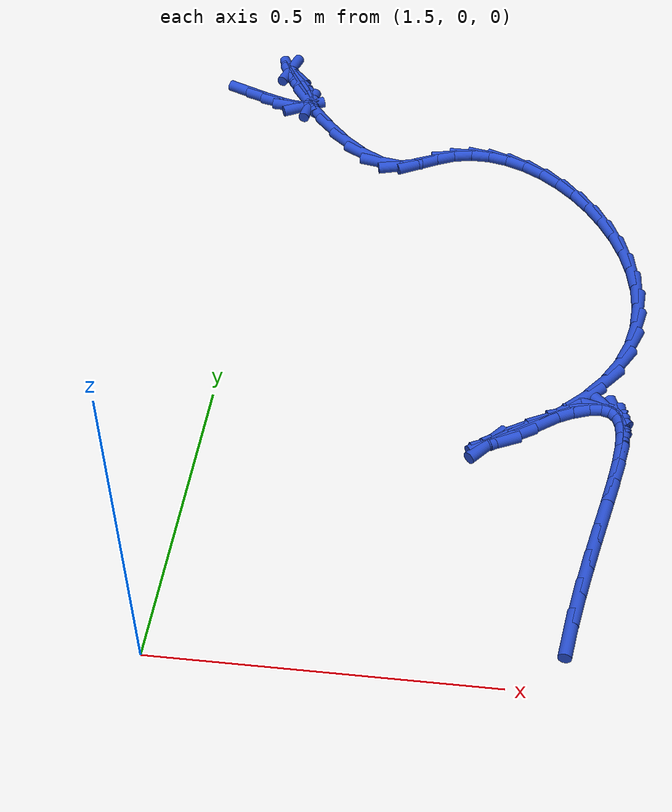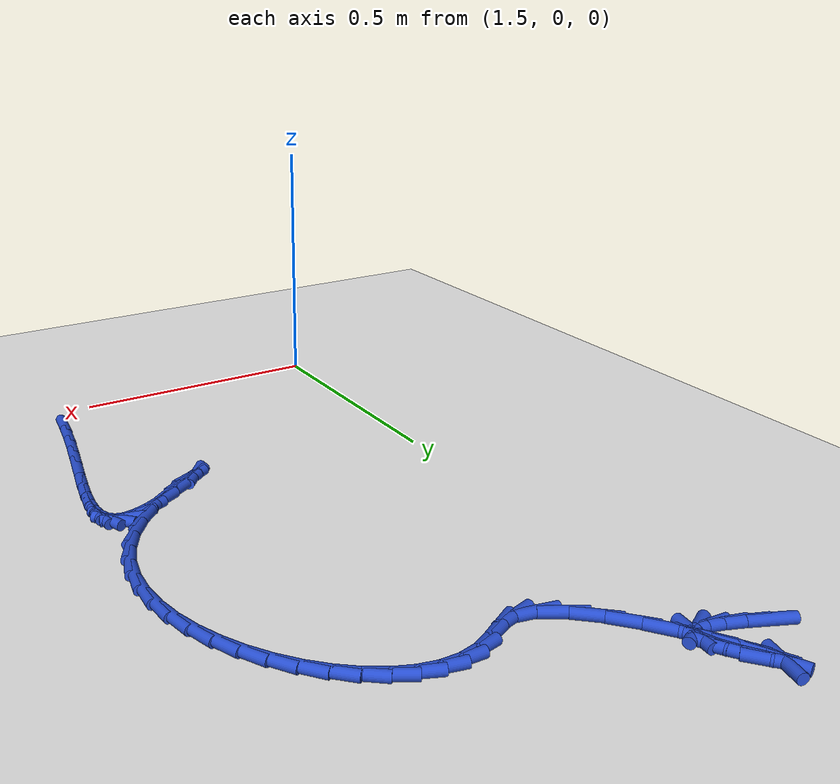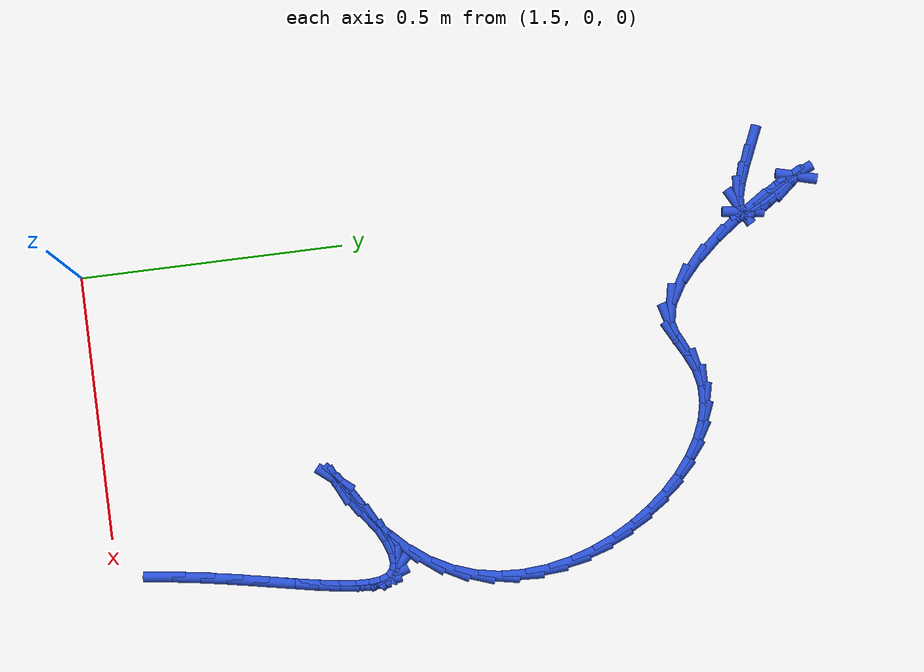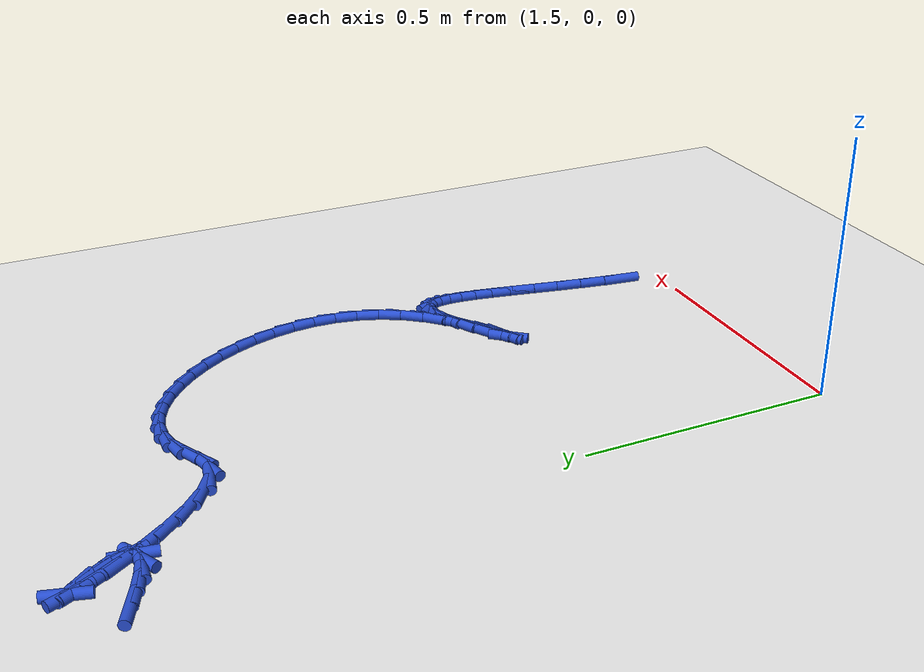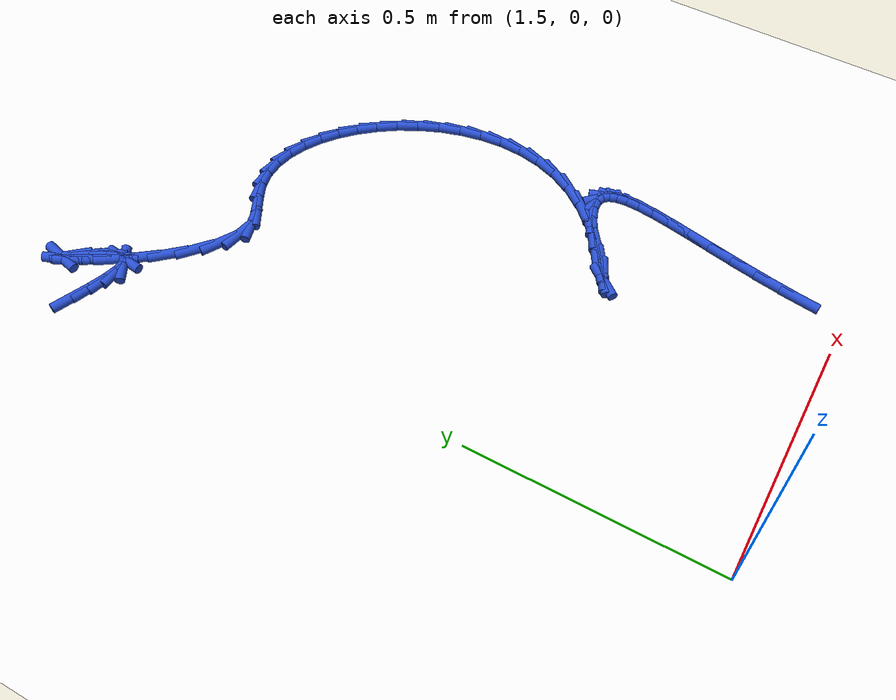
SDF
<sdf version="1.6">
 <world name="default">
  <model name="ground_plane">
   <static>1</static>
   <link name="link">
    <collision name="collision">
     <geometry><plane><normal>0 0 1</normal><size>100 100</size></plane></geometry>
     <surface><friction><ode><mu>100</mu><mu2>50</mu2></ode></friction></surface>
    </collision>
    <visual name="visual">
     <cast_shadows>0</cast_shadows>
     <geometry><plane><normal>0 0 1</normal><size>100 100</size></plane></geometry>
     <material>
      <script><uri>file://media/materials/scripts/gazebo.material</uri><name>Gazebo/WhiteGlow</name></script>
     </material>
    </visual>
   </link>
  </model>
  <model name="line">
   <link name="link_70">
    <pose>1.408879136556868 1.2959963773968743 0.01 0 1.57 -0.41155478175469357</pose>
    <collision name="collision">
     <geometry><cylinder><radius>0.01</radius><length>0.08</length></cylinder></geometry>
    </collision>
    <visual name="visual">
     <material>
      <script><name>Gazebo/Blue</name><uri>file://media/materials/scripts/gazebo.material</uri></script>
     </material>
     <geometry><cylinder><radius>0.01</radius><length>0.08</length></cylinder></geometry>
    </visual>
   </link>
   <link name="link_71">
    <pose>1.445638414417487 1.2799516531413841 0.01 0 1.57 -0.36487660915361647</pose>
    <collision name="collision">
     <geometry><cylinder><radius>0.01</radius><length>0.08</length></cylinder></geometry>
    </collision>
    <visual name="visual">
     <material>
      <script><name>Gazebo/Blue</name><uri>file://media/materials/scripts/gazebo.material</uri></script>
     </material>
     <geometry><cylinder><radius>0.01</radius><length>0.08</length></cylinder></geometry>
    </visual>
   </link>
   <link name="link_72">
    <pose>1.4772559102940783 1.267874381290892 0.01 0 1.57 -0.27221730299844576</pose>
    <collision name="collision">
     <geometry><cylinder><radius>0.01</radius><length>0.08</length></cylinder></geometry>
    </collision>
    <visual name="visual">
     <material>
      <script><name>Gazebo/Blue</name><uri>file://media/materials/scripts/gazebo.material</uri></script>
     </material>
     <geometry><cylinder><radius>0.01</radius><length>0.08</length></cylinder></geometry>
    </visual>
   </link>
   <link name="link_73">
    <pose>1.5028147244982089 1.260739721549803 0.01 0 1.57 -0.06538975457168264</pose>
    <collision name="collision">
     <geometry><cylinder><radius>0.01</radius><length>0.08</length></cylinder></geometry>
    </collision>
    <visual name="visual">
     <material>
      <script><name>Gazebo/Blue</name><uri>file://media/materials/scripts/gazebo.material</uri></script>
     </material>
     <geometry><cylinder><radius>0.01</radius><length>0.08</length></cylinder></geometry>
    </visual>
   </link>
   <link name="link_74">
    <pose>1.5213979573414456 1.2595228336225222 0.01 0 1.57 0.48808455209873003</pose>
    <collision name="collision">
     <geometry><cylinder><radius>0.01</radius><length>0.08</length></cylinder></geometry>
    </collision>
    <visual name="visual">
     <material>
      <script><name>Gazebo/Blue</name><uri>file://media/materials/scripts/gazebo.material</uri></script>
     </material>
     <geometry><cylinder><radius>0.01</radius><length>0.08</length></cylinder></geometry>
    </visual>
   </link>
   <link name="link_75">
    <pose>1.532088709135356 1.2651988772134546 0.01 0 1.57 1.4327728302426603</pose>
    <collision name="collision">
     <geometry><cylinder><radius>0.01</radius><length>0.08</length></cylinder></geometry>
    </collision>
    <visual name="visual">
     <material>
      <script><name>Gazebo/Blue</name><uri>file://media/materials/scripts/gazebo.material</uri></script>
     </material>
     <geometry><cylinder><radius>0.01</radius><length>0.08</length></cylinder></geometry>
    </visual>
   </link>
   <link name="link_76">
    <pose>1.5339700801915075 1.2787430120270062 0.01 0 1.57 -1.233750508250868</pose>
    <collision name="collision">
     <geometry><cylinder><radius>0.01</radius><length>0.08</length></cylinder></geometry>
    </collision>
    <visual name="visual">
     <material>
      <script><name>Gazebo/Blue</name><uri>file://media/materials/scripts/gazebo.material</uri></script>
     </material>
     <geometry><cylinder><radius>0.01</radius><length>0.08</length></cylinder></geometry>
    </visual>
   </link>
   <link name="link_77">
    <pose>1.5261251708214667 1.301130397767581 0.01 0 1.57 -1.0558645574576324</pose>
    <collision name="collision">
     <geometry><cylinder><radius>0.01</radius><length>0.08</length></cylinder></geometry>
    </collision>
    <visual name="visual">
     <material>
      <script><name>Gazebo/Blue</name><uri>file://media/materials/scripts/gazebo.material</uri></script>
     </material>
     <geometry><cylinder><radius>0.01</radius><length>0.08</length></cylinder></geometry>
    </visual>
   </link>
   <link name="link_78">
    <pose>1.5087342437098061 1.3318644803971376 0.01 0 1.57 -0.9763208478459828</pose>
    <collision name="collision">
     <geometry><cylinder><radius>0.01</radius><length>0.08</length></cylinder></geometry>
    </collision>
    <visual name="visual">
     <material>
      <script><name>Gazebo/Blue</name><uri>file://media/materials/scripts/gazebo.material</uri></script>
     </material>
     <geometry><cylinder><radius>0.01</radius><length>0.08</length></cylinder></geometry>
    </visual>
   </link>
   <link name="link_79">
    <pose>1.4891869022287192 1.3607782268081703 0.01 0 1.57 -0.8588360218117883</pose>
    <collision name="collision">
     <geometry><cylinder><radius>0.01</radius><length>0.08</length></cylinder></geometry>
    </collision>
    <visual name="visual">
     <material>
      <script><name>Gazebo/Blue</name><uri>file://media/materials/scripts/gazebo.material</uri></script>
     </material>
     <geometry><cylinder><radius>0.01</radius><length>0.08</length></cylinder></geometry>
    </visual>
   </link>
   <link name="link_80">
    <pose>1.4772433302474652 1.3746187380056363 0.01 0 1.57 1.309518038997576</pose>
    <collision name="collision">
     <geometry><cylinder><radius>0.01</radius><length>0.08</length></cylinder></geometry>
    </collision>
    <visual name="visual">
     <material>
      <script><name>Gazebo/Blue</name><uri>file://media/materials/scripts/gazebo.material</uri></script>
     </material>
     <geometry><cylinder><radius>0.01</radius><length>0.08</length></cylinder></geometry>
    </visual>
   </link>
   <link name="link_81">
    <pose>1.4760504526278317 1.3701575605409764 0.01 0 1.57 -1.1655462652399033</pose>
    <collision name="collision">
     <geometry><cylinder><radius>0.01</radius><length>0.08</length></cylinder></geometry>
    </collision>
    <visual name="visual">
     <material>
      <script><name>Gazebo/Blue</name><uri>file://media/materials/scripts/gazebo.material</uri></script>
     </material>
     <geometry><cylinder><radius>0.01</radius><length>0.08</length></cylinder></geometry>
    </visual>
   </link>
   <link name="link_82">
    <pose>1.4843111943444742 1.3509015537082 0.01 0 1.57 -1.0779919686023898</pose>
    <collision name="collision">
     <geometry><cylinder><radius>0.01</radius><length>0.08</length></cylinder></geometry>
    </collision>
    <visual name="visual">
     <material>
      <script><name>Gazebo/Blue</name><uri>file://media/materials/scripts/gazebo.material</uri></script>
     </material>
     <geometry><cylinder><radius>0.01</radius><length>0.08</length></cylinder></geometry>
    </visual>
   </link>
   <link name="link_83">
    <pose>1.5006462802699212 1.3204821590266422 0.01 0 1.57 -1.0253671478310846</pose>
    <collision name="collision">
     <geometry><cylinder><radius>0.01</radius><length>0.08</length></cylinder></geometry>
    </collision>
    <visual name="visual">
     <material>
      <script><name>Gazebo/Blue</name><uri>file://media/materials/scripts/gazebo.material</uri></script>
     </material>
     <geometry><cylinder><radius>0.01</radius><length>0.08</length></cylinder></geometry>
    </visual>
   </link>
   <link name="link_84">
    <pose>1.523676435276702 1.2825308180156376 0.01 0 1.57 -0.9754732832924256</pose>
    <collision name="collision">
     <geometry><cylinder><radius>0.01</radius><length>0.08</length></cylinder></geometry>
    </collision>
    <visual name="visual">
     <material>
      <script><name>Gazebo/Blue</name><uri>file://media/materials/scripts/gazebo.material</uri></script>
     </material>
     <geometry><cylinder><radius>0.01</radius><length>0.08</length></cylinder></geometry>
    </visual>
   </link>
   <link name="link_85">
    <pose>1.5520223842373457 1.240678972194521 0.01 0 1.57 -0.9168665719652358</pose>
    <collision name="collision">
     <geometry><cylinder><radius>0.01</radius><length>0.08</length></cylinder></geometry>
    </collision>
    <visual name="visual">
     <material>
      <script><name>Gazebo/Blue</name><uri>file://media/materials/scripts/gazebo.material</uri></script>
     </material>
     <geometry><cylinder><radius>0.01</radius><length>0.08</length></cylinder></geometry>
    </visual>
   </link>
   <link name="link_86">
    <pose>1.5843048520243814 1.198558063082627 0.01 0 1.57 -0.8385940289771048</pose>
    <collision name="collision">
     <geometry><cylinder><radius>0.01</radius><length>0.08</length></cylinder></geometry>
    </collision>
    <visual name="visual">
     <material>
      <script><name>Gazebo/Blue</name><uri>file://media/materials/scripts/gazebo.material</uri></script>
     </material>
     <geometry><cylinder><radius>0.01</radius><length>0.08</length></cylinder></geometry>
    </visual>
   </link>
   <link name="link_87">
    <pose>1.6191445635103383 1.1597995321992904 0.01 0 1.57 -0.7227358572964344</pose>
    <collision name="collision">
     <geometry><cylinder><radius>0.01</radius><length>0.08</length></cylinder></geometry>
    </collision>
    <visual name="visual">
     <material>
      <script><name>Gazebo/Blue</name><uri>file://media/materials/scripts/gazebo.material</uri></script>
     </material>
     <geometry><cylinder><radius>0.01</radius><length>0.08</length></cylinder></geometry>
    </visual>
   </link>
   <link name="link_88">
    <pose>1.6551622435677456 1.1280348210638462 0.01 0 1.57 -0.5331954214277275</pose>
    <collision name="collision">
     <geometry><cylinder><radius>0.01</radius><length>0.08</length></cylinder></geometry>
    </collision>
    <visual name="visual">
     <material>
      <script><name>Gazebo/Blue</name><uri>file://media/materials/scripts/gazebo.material</uri></script>
     </material>
     <geometry><cylinder><radius>0.01</radius><length>0.08</length></cylinder></geometry>
    </visual>
   </link>
   <link name="link_89">
    <pose>1.6909786170691337 1.1068953711956295 0.01 0 1.57 -0.19839489617529274</pose>
    <collision name="collision">
     <geometry><cylinder><radius>0.01</radius><length>0.08</length></cylinder></geometry>
    </collision>
    <visual name="visual">
     <material>
      <script><name>Gazebo/Blue</name><uri>file://media/materials/scripts/gazebo.material</uri></script>
     </material>
     <geometry><cylinder><radius>0.01</radius><length>0.08</length></cylinder></geometry>
    </visual>
   </link>
   <link name="link_90">
    <pose>1.7252144088870303 1.1000126241139747 0.01 0 1.57 0.2682369286196447</pose>
    <collision name="collision">
     <geometry><cylinder><radius>0.01</radius><length>0.08</length></cylinder></geometry>
    </collision>
    <visual name="visual">
     <material>
      <script><name>Gazebo/Blue</name><uri>file://media/materials/scripts/gazebo.material</uri></script>
     </material>
     <geometry><cylinder><radius>0.01</radius><length>0.08</length></cylinder></geometry>
    </visual>
   </link>
   <link name="link_91">
    <pose>1.7570063198343666 1.108750978822055 0.01 0 1.57 0.4954996933951386</pose>
    <collision name="collision">
     <geometry><cylinder><radius>0.01</radius><length>0.08</length></cylinder></geometry>
    </collision>
    <visual name="visual">
     <material>
      <script><name>Gazebo/Blue</name><uri>file://media/materials/scripts/gazebo.material</uri></script>
     </material>
     <geometry><cylinder><radius>0.01</radius><length>0.08</length></cylinder></geometry>
    </visual>
   </link>
   <link name="link_92">
    <pose>1.787584333638353 1.125277581130717 0.01 0 1.57 0.4306012057078743</pose>
    <collision name="collision">
     <geometry><cylinder><radius>0.01</radius><length>0.08</length></cylinder></geometry>
    </collision>
    <visual name="visual">
     <material>
      <script><name>Gazebo/Blue</name><uri>file://media/materials/scripts/gazebo.material</uri></script>
     </material>
     <geometry><cylinder><radius>0.01</radius><length>0.08</length></cylinder></geometry>
    </visual>
   </link>
   <link name="link_93">
    <pose>1.8186808127239034 1.1395617140799776 0.01 0 1.57 0.2015976093520429</pose>
    <collision name="collision">
     <geometry><cylinder><radius>0.01</radius><length>0.08</length></cylinder></geometry>
    </collision>
    <visual name="visual">
     <material>
      <script><name>Gazebo/Blue</name><uri>file://media/materials/scripts/gazebo.material</uri></script>
     </material>
     <geometry><cylinder><radius>0.01</radius><length>0.08</length></cylinder></geometry>
    </visual>
   </link>
   <link name="link_94">
    <pose>1.851053698110514 1.1461778847529427 0.01 0 1.57 -0.024871711894914314</pose>
    <collision name="collision">
     <geometry><cylinder><radius>0.01</radius><length>0.08</length></cylinder></geometry>
    </collision>
    <visual name="visual">
     <material>
      <script><name>Gazebo/Blue</name><uri>file://media/materials/scripts/gazebo.material</uri></script>
     </material>
     <geometry><cylinder><radius>0.01</radius><length>0.08</length></cylinder></geometry>
    </visual>
   </link>
   <link name="link_95">
    <pose>1.8842652148252643 1.1453516871080744 0.01 0 1.57 -0.22558317602559938</pose>
    <collision name="collision">
     <geometry><cylinder><radius>0.01</radius><length>0.08</length></cylinder></geometry>
    </collision>
    <visual name="visual">
     <material>
      <script><name>Gazebo/Blue</name><uri>file://media/materials/scripts/gazebo.material</uri></script>
     </material>
     <geometry><cylinder><radius>0.01</radius><length>0.08</length></cylinder></geometry>
    </visual>
   </link>
   <link name="link_96">
    <pose>1.917804355999808 1.13765481719306 0.01 0 1.57 -0.3972820533355847</pose>
    <collision name="collision">
     <geometry><cylinder><radius>0.01</radius><length>0.08</length></cylinder></geometry>
    </collision>
    <visual name="visual">
     <material>
      <script><name>Gazebo/Blue</name><uri>file://media/materials/scripts/gazebo.material</uri></script>
     </material>
     <geometry><cylinder><radius>0.01</radius><length>0.08</length></cylinder></geometry>
    </visual>
   </link>
   <link name="link_97">
    <pose>1.9511601147657998 1.1236589710555887 0.01 0 1.57 -0.5432581019854265</pose>
    <collision name="collision">
     <geometry><cylinder><radius>0.01</radius><length>0.08</length></cylinder></geometry>
    </collision>
    <visual name="visual">
     <material>
      <script><name>Gazebo/Blue</name><uri>file://media/materials/scripts/gazebo.material</uri></script>
     </material>
     <geometry><cylinder><radius>0.01</radius><length>0.08</length></cylinder></geometry>
    </visual>
   </link>
   <link name="link_98">
    <pose>1.9838214842548936 1.1039358447433483 0.01 0 1.57 -0.6691710206484699</pose>
    <collision name="collision">
     <geometry><cylinder><radius>0.01</radius><length>0.08</length></cylinder></geometry>
    </collision>
    <visual name="visual">
     <material>
      <script><name>Gazebo/Blue</name><uri>file://media/materials/scripts/gazebo.material</uri></script>
     </material>
     <geometry><cylinder><radius>0.01</radius><length>0.08</length></cylinder></geometry>
    </visual>
   </link>
   <link name="link_99">
    <pose>2.0152774575987427 1.0790571343040267 0.01 0 1.57 -0.7807197910300152</pose>
    <collision name="collision">
     <geometry><cylinder><radius>0.01</radius><length>0.08</length></cylinder></geometry>
    </collision>
    <visual name="visual">
     <material>
      <script><name>Gazebo/Blue</name><uri>file://media/materials/scripts/gazebo.material</uri></script>
     </material>
     <geometry><cylinder><radius>0.01</radius><length>0.08</length></cylinder></geometry>
    </visual>
   </link>
   <link name="link_100">
    <pose>2.0450170279290036 1.0495945357853134 0.01 0 1.57 -0.8828573700426748</pose>
    <collision name="collision">
     <geometry><cylinder><radius>0.01</radius><length>0.08</length></cylinder></geometry>
    </collision>
    <visual name="visual">
     <material>
      <script><name>Gazebo/Blue</name><uri>file://media/materials/scripts/gazebo.material</uri></script>
     </material>
     <geometry><cylinder><radius>0.01</radius><length>0.08</length></cylinder></geometry>
    </visual>
   </link>
   <link name="link_101">
    <pose>2.072529188377327 1.0161197452348947 0.01 0 1.57 -0.9797327322454641</pose>
    <collision name="collision">
     <geometry><cylinder><radius>0.01</radius><length>0.08</length></cylinder></geometry>
    </collision>
    <visual name="visual">
     <material>
      <script><name>Gazebo/Blue</name><uri>file://media/materials/scripts/gazebo.material</uri></script>
     </material>
     <geometry><cylinder><radius>0.01</radius><length>0.08</length></cylinder></geometry>
    </visual>
   </link>
   <link name="link_102">
    <pose>2.097302932075369 0.9792044587004611 0.01 0 1.57 -1.0748671950202382</pose>
    <collision name="collision">
     <geometry><cylinder><radius>0.01</radius><length>0.08</length></cylinder></geometry>
    </collision>
    <visual name="visual">
     <material>
      <script><name>Gazebo/Blue</name><uri>file://media/materials/scripts/gazebo.material</uri></script>
     </material>
     <geometry><cylinder><radius>0.01</radius><length>0.08</length></cylinder></geometry>
    </visual>
   </link>
   <link name="link_103">
    <pose>2.1188272521547833 0.9394203722296987 0.01 0 1.57 -1.1713559437725443</pose>
    <collision name="collision">
     <geometry><cylinder><radius>0.01</radius><length>0.08</length></cylinder></geometry>
    </collision>
    <visual name="visual">
     <material>
      <script><name>Gazebo/Blue</name><uri>file://media/materials/scripts/gazebo.material</uri></script>
     </material>
     <geometry><cylinder><radius>0.01</radius><length>0.08</length></cylinder></geometry>
    </visual>
   </link>
   <link name="link_104">
    <pose>2.1365911417472248 0.8973391818702968 0.01 0 1.57 -1.2720159216272784</pose>
    <collision name="collision">
     <geometry><cylinder><radius>0.01</radius><length>0.08</length></cylinder></geometry>
    </collision>
    <visual name="visual">
     <material>
      <script><name>Gazebo/Blue</name><uri>file://media/materials/scripts/gazebo.material</uri></script>
     </material>
     <geometry><cylinder><radius>0.01</radius><length>0.08</length></cylinder></geometry>
    </visual>
   </link>
   <link name="link_105">
    <pose>2.1500835939843466 0.853532583669943 0.01 0 1.57 -1.3794400944741005</pose>
    <collision name="collision">
     <geometry><cylinder><radius>0.01</radius><length>0.08</length></cylinder></geometry>
    </collision>
    <visual name="visual">
     <material>
      <script><name>Gazebo/Blue</name><uri>file://media/materials/scripts/gazebo.material</uri></script>
     </material>
     <geometry><cylinder><radius>0.01</radius><length>0.08</length></cylinder></geometry>
    </visual>
   </link>
   <link name="link_106">
    <pose>2.158793601997803 0.8085722736763263 0.01 0 1.57 -1.495917210118876</pose>
    <collision name="collision">
     <geometry><cylinder><radius>0.01</radius><length>0.08</length></cylinder></geometry>
    </collision>
    <visual name="visual">
     <material>
      <script><name>Gazebo/Blue</name><uri>file://media/materials/scripts/gazebo.material</uri></script>
     </material>
     <geometry><cylinder><radius>0.01</radius><length>0.08</length></cylinder></geometry>
    </visual>
   </link>
   <link name="link_107">
    <pose>2.1622101589192484 0.7630299479371344 0.01 0 1.57 1.518423575339753</pose>
    <collision name="collision">
     <geometry><cylinder><radius>0.01</radius><length>0.08</length></cylinder></geometry>
    </collision>
    <visual name="visual">
     <material>
      <script><name>Gazebo/Blue</name><uri>file://media/materials/scripts/gazebo.material</uri></script>
     </material>
     <geometry><cylinder><radius>0.01</radius><length>0.08</length></cylinder></geometry>
    </visual>
   </link>
   <link name="link_108">
    <pose>2.1598222578803363 0.7174773025000557 0.01 0 1.57 1.3797108842150365</pose>
    <collision name="collision">
     <geometry><cylinder><radius>0.01</radius><length>0.08</length></cylinder></geometry>
    </collision>
    <visual name="visual">
     <material>
      <script><name>Gazebo/Blue</name><uri>file://media/materials/scripts/gazebo.material</uri></script>
     </material>
     <geometry><cylinder><radius>0.01</radius><length>0.08</length></cylinder></geometry>
    </visual>
   </link>
   <link name="link_109">
    <pose>2.151118892012721 0.6724860334127782 0.01 0 1.57 1.230480714582679</pose>
    <collision name="collision">
     <geometry><cylinder><radius>0.01</radius><length>0.08</length></cylinder></geometry>
    </collision>
    <visual name="visual">
     <material>
      <script><name>Gazebo/Blue</name><uri>file://media/materials/scripts/gazebo.material</uri></script>
     </material>
     <geometry><cylinder><radius>0.01</radius><length>0.08</length></cylinder></geometry>
    </visual>
   </link>
   <link name="link_110">
    <pose>2.135589054448057 0.6286278367229904 0.01 0 1.57 1.0737463414864978</pose>
    <collision name="collision">
     <geometry><cylinder><radius>0.01</radius><length>0.08</length></cylinder></geometry>
    </collision>
    <visual name="visual">
     <material>
      <script><name>Gazebo/Blue</name><uri>file://media/materials/scripts/gazebo.material</uri></script>
     </material>
     <geometry><cylinder><radius>0.01</radius><length>0.08</length></cylinder></geometry>
    </visual>
   </link>
   <link name="link_111">
    <pose>2.112721738317998 0.5864744084783804 0.01 0 1.57 0.9167636197912744</pose>
    <collision name="collision">
     <geometry><cylinder><radius>0.01</radius><length>0.08</length></cylinder></geometry>
    </collision>
    <visual name="visual">
     <material>
      <script><name>Gazebo/Blue</name><uri>file://media/materials/scripts/gazebo.material</uri></script>
     </material>
     <geometry><cylinder><radius>0.01</radius><length>0.08</length></cylinder></geometry>
    </visual>
   </link>
   <link name="link_112">
    <pose>2.0821815896063964 0.5466353052517483 0.01 0 1.57 0.7919793317701881</pose>
    <collision name="collision">
     <geometry><cylinder><radius>0.01</radius><length>0.08</length></cylinder></geometry>
    </collision>
    <visual name="visual">
     <material>
      <script><name>Gazebo/Blue</name><uri>file://media/materials/scripts/gazebo.material</uri></script>
     </material>
     <geometry><cylinder><radius>0.01</radius><length>0.08</length></cylinder></geometry>
    </visual>
   </link>
   <link name="link_113">
    <pose>2.0463207899294895 0.5102993597792265 0.01 0 1.57 0.7040384110455126</pose>
    <collision name="collision">
     <geometry><cylinder><radius>0.01</radius><length>0.08</length></cylinder></geometry>
    </collision>
    <visual name="visual">
     <material>
      <script><name>Gazebo/Blue</name><uri>file://media/materials/scripts/gazebo.material</uri></script>
     </material>
     <geometry><cylinder><radius>0.01</radius><length>0.08</length></cylinder></geometry>
    </visual>
   </link>
   <link name="link_114">
    <pose>2.009591118671495 0.4791079557975421 0.01 0 1.57 0.6352351689595952</pose>
    <collision name="collision">
     <geometry><cylinder><radius>0.01</radius><length>0.08</length></cylinder></geometry>
    </collision>
    <visual name="visual">
     <material>
      <script><name>Gazebo/Blue</name><uri>file://media/materials/scripts/gazebo.material</uri></script>
     </material>
     <geometry><cylinder><radius>0.01</radius><length>0.08</length></cylinder></geometry>
    </visual>
   </link>
   <link name="link_115">
    <pose>1.9765001692742543 0.4547145073037002 0.01 0 1.57 0.5686734082671304</pose>
    <collision name="collision">
     <geometry><cylinder><radius>0.01</radius><length>0.08</length></cylinder></geometry>
    </collision>
    <visual name="visual">
     <material>
      <script><name>Gazebo/Blue</name><uri>file://media/materials/scripts/gazebo.material</uri></script>
     </material>
     <geometry><cylinder><radius>0.01</radius><length>0.08</length></cylinder></geometry>
    </visual>
   </link>
   <link name="link_116">
    <pose>1.9515555351796092 0.43877242829470564 0.01 0 1.57 0.44339529314627796</pose>
    <collision name="collision">
     <geometry><cylinder><radius>0.01</radius><length>0.08</length></cylinder></geometry>
    </collision>
    <visual name="visual">
     <material>
      <script><name>Gazebo/Blue</name><uri>file://media/materials/scripts/gazebo.material</uri></script>
     </material>
     <geometry><cylinder><radius>0.01</radius><length>0.08</length></cylinder></geometry>
    </visual>
   </link>
   <link name="link_117">
    <pose>1.9392648098294012 0.43293513276756324 0.01 0 1.57 0.887834348731546</pose>
    <collision name="collision">
     <geometry><cylinder><radius>0.01</radius><length>0.08</length></cylinder></geometry>
    </collision>
    <visual name="visual">
     <material>
      <script><name>Gazebo/Blue</name><uri>file://media/materials/scripts/gazebo.material</uri></script>
     </material>
     <geometry><cylinder><radius>0.01</radius><length>0.08</length></cylinder></geometry>
    </visual>
   </link>
   <link name="link_118">
    <pose>1.9440288181973746 0.43879080132957127 0.01 0 1.57 0.6468726185527937</pose>
    <collision name="collision">
     <geometry><cylinder><radius>0.01</radius><length>0.08</length></cylinder></geometry>
    </collision>
    <visual name="visual">
     <material>
      <script><name>Gazebo/Blue</name><uri>file://media/materials/scripts/gazebo.material</uri></script>
     </material>
     <geometry><cylinder><radius>0.01</radius><length>0.08</length></cylinder></geometry>
    </visual>
   </link>
   <link name="link_119">
    <pose>1.9656307115696983 0.4551063087046828 0.01 0 1.57 0.5968410052420068</pose>
    <collision name="collision">
     <geometry><cylinder><radius>0.01</radius><length>0.08</length></cylinder></geometry>
    </collision>
    <visual name="visual">
     <material>
      <script><name>Gazebo/Blue</name><uri>file://media/materials/scripts/gazebo.material</uri></script>
     </material>
     <geometry><cylinder><radius>0.01</radius><length>0.08</length></cylinder></geometry>
    </visual>
   </link>
   <link name="link_120">
    <pose>1.9975700041813829 0.47680935357698806 0.01 0 1.57 0.5517398972077615</pose>
    <collision name="collision">
     <geometry><cylinder><radius>0.01</radius><length>0.08</length></cylinder></geometry>
    </collision>
    <visual name="visual">
     <material>
      <script><name>Gazebo/Blue</name><uri>file://media/materials/scripts/gazebo.material</uri></script>
     </material>
     <geometry><cylinder><radius>0.01</radius><length>0.08</length></cylinder></geometry>
    </visual>
   </link>
   <link name="link_121">
    <pose>2.032896305410748 0.4985527517988732 0.01 0 1.57 0.47897500649590247</pose>
    <collision name="collision">
     <geometry><cylinder><radius>0.01</radius><length>0.08</length></cylinder></geometry>
    </collision>
    <visual name="visual">
     <material>
      <script><name>Gazebo/Blue</name><uri>file://media/materials/scripts/gazebo.material</uri></script>
     </material>
     <geometry><cylinder><radius>0.01</radius><length>0.08</length></cylinder></geometry>
    </visual>
   </link>
   <link name="link_122">
    <pose>2.064893744140487 0.5151693012379518 0.01 0 1.57 0.3459149495442369</pose>
    <collision name="collision">
     <geometry><cylinder><radius>0.01</radius><length>0.08</length></cylinder></geometry>
    </collision>
    <visual name="visual">
     <material>
      <script><name>Gazebo/Blue</name><uri>file://media/materials/scripts/gazebo.material</uri></script>
     </material>
     <geometry><cylinder><radius>0.01</radius><length>0.08</length></cylinder></geometry>
    </visual>
   </link>
   <link name="link_123">
    <pose>2.0907511564712817 0.5244884676758355 0.01 0 1.57 0.11494848703695586</pose>
    <collision name="collision">
     <geometry><cylinder><radius>0.01</radius><length>0.08</length></cylinder></geometry>
    </collision>
    <visual name="visual">
     <material>
      <script><name>Gazebo/Blue</name><uri>file://media/materials/scripts/gazebo.material</uri></script>
     </material>
     <geometry><cylinder><radius>0.01</radius><length>0.08</length></cylinder></geometry>
    </visual>
   </link>
   <link name="link_124">
    <pose>2.1108793476242704 0.5268124173923183 0.01 0 1.57 -0.2805448851792396</pose>
    <collision name="collision">
     <geometry><cylinder><radius>0.01</radius><length>0.08</length></cylinder></geometry>
    </collision>
    <visual name="visual">
     <material>
      <script><name>Gazebo/Blue</name><uri>file://media/materials/scripts/gazebo.material</uri></script>
     </material>
     <geometry><cylinder><radius>0.01</radius><length>0.08</length></cylinder></geometry>
    </visual>
   </link>
   <link name="link_125">
    <pose>2.125785511684572 0.522517290309733 0.01 0 1.57 -0.8021232330622948</pose>
    <collision name="collision">
     <geometry><cylinder><radius>0.01</radius><length>0.08</length></cylinder></geometry>
    </collision>
    <visual name="visual">
     <material>
      <script><name>Gazebo/Blue</name><uri>file://media/materials/scripts/gazebo.material</uri></script>
     </material>
     <geometry><cylinder><radius>0.01</radius><length>0.08</length></cylinder></geometry>
    </visual>
   </link>
   <link name="link_126">
    <pose>2.1359768427373083 0.5119792263504115 0.01 0 1.57 -1.2210410703266932</pose>
    <collision name="collision">
     <geometry><cylinder><radius>0.01</radius><length>0.08</length></cylinder></geometry>
    </collision>
    <visual name="visual">
     <material>
      <script><name>Gazebo/Blue</name><uri>file://media/materials/scripts/gazebo.material</uri></script>
     </material>
     <geometry><cylinder><radius>0.01</radius><length>0.08</length></cylinder></geometry>
    </visual>
   </link>
   <link name="link_127">
    <pose>2.1419605348675983 0.4955743654366869 0.01 0 1.57 -1.4668926533082305</pose>
    <collision name="collision">
     <geometry><cylinder><radius>0.01</radius><length>0.08</length></cylinder></geometry>
    </collision>
    <visual name="visual">
     <material>
      <script><name>Gazebo/Blue</name><uri>file://media/materials/scripts/gazebo.material</uri></script>
     </material>
     <geometry><cylinder><radius>0.01</radius><length>0.08</length></cylinder></geometry>
    </visual>
   </link>
   <link name="link_128">
    <pose>2.144243782160564 0.4736788474908919 0.01 0 1.57 1.537117756019845</pose>
    <collision name="collision">
     <geometry><cylinder><radius>0.01</radius><length>0.08</length></cylinder></geometry>
    </collision>
    <visual name="visual">
     <material>
      <script><name>Gazebo/Blue</name><uri>file://media/materials/scripts/gazebo.material</uri></script>
     </material>
     <geometry><cylinder><radius>0.01</radius><length>0.08</length></cylinder></geometry>
    </visual>
   </link>
   <link name="link_129">
    <pose>2.1433337787013236 0.44666881243535855 0.01 0 1.57 1.4580096195918681</pose>
    <collision name="collision">
     <geometry><cylinder><radius>0.01</radius><length>0.08</length></cylinder></geometry>
    </collision>
    <visual name="visual">
     <material>
      <script><name>Gazebo/Blue</name><uri>file://media/materials/scripts/gazebo.material</uri></script>
     </material>
     <geometry><cylinder><radius>0.01</radius><length>0.08</length></cylinder></geometry>
    </visual>
   </link>
   <link name="link_130">
    <pose>2.1397377185749984 0.4149204001924196 0.01 0 1.57 1.4122161622252627</pose>
    <collision name="collision">
     <geometry><cylinder><radius>0.01</radius><length>0.08</length></cylinder></geometry>
    </collision>
    <visual name="visual">
     <material>
      <script><name>Gazebo/Blue</name><uri>file://media/materials/scripts/gazebo.material</uri></script>
     </material>
     <geometry><cylinder><radius>0.01</radius><length>0.08</length></cylinder></geometry>
    </visual>
   </link>
   <link name="link_131">
    <pose>2.133962795866709 0.3788097506844078 0.01 0 1.57 1.3871727348426455</pose>
    <collision name="collision">
     <geometry><cylinder><radius>0.01</radius><length>0.08</length></cylinder></geometry>
    </collision>
    <visual name="visual">
     <material>
      <script><name>Gazebo/Blue</name><uri>file://media/materials/scripts/gazebo.material</uri></script>
     </material>
     <geometry><cylinder><radius>0.01</radius><length>0.08</length></cylinder></geometry>
    </visual>
   </link>
   <link name="link_132">
    <pose>2.1265162046615758 0.3387130038336558 0.01 0 1.57 1.376268431149666</pose>
    <collision name="collision">
     <geometry><cylinder><radius>0.01</radius><length>0.08</length></cylinder></geometry>
    </collision>
    <visual name="visual">
     <material>
      <script><name>Gazebo/Blue</name><uri>file://media/materials/scripts/gazebo.material</uri></script>
     </material>
     <geometry><cylinder><radius>0.01</radius><length>0.08</length></cylinder></geometry>
    </visual>
   </link>
   <link name="link_133">
    <pose>2.1179051390447183 0.2950062995624959 0.01 0 1.57 1.375855119964623</pose>
    <collision name="collision">
     <geometry><cylinder><radius>0.01</radius><length>0.08</length></cylinder></geometry>
    </collision>
    <visual name="visual">
     <material>
      <script><name>Gazebo/Blue</name><uri>file://media/materials/scripts/gazebo.material</uri></script>
     </material>
     <geometry><cylinder><radius>0.01</radius><length>0.08</length></cylinder></geometry>
    </visual>
   </link>
   <link name="link_134">
    <pose>2.1086367931012573 0.24806577779326158 0.01 0 1.57 1.383872286977306</pose>
    <collision name="collision">
     <geometry><cylinder><radius>0.01</radius><length>0.08</length></cylinder></geometry>
    </collision>
    <visual name="visual">
     <material>
      <script><name>Gazebo/Blue</name><uri>file://media/materials/scripts/gazebo.material</uri></script>
     </material>
     <geometry><cylinder><radius>0.01</radius><length>0.08</length></cylinder></geometry>
    </visual>
   </link>
   <link name="link_135">
    <pose>2.0992183609163124 0.19826757844828385 0.01 0 1.57 1.3991774828343013</pose>
    <collision name="collision">
     <geometry><cylinder><radius>0.01</radius><length>0.08</length></cylinder></geometry>
    </collision>
    <visual name="visual">
     <material>
      <script><name>Gazebo/Blue</name><uri>file://media/materials/scripts/gazebo.material</uri></script>
     </material>
     <geometry><cylinder><radius>0.01</radius><length>0.08</length></cylinder></geometry>
    </visual>
   </link>
   <link name="link_136">
    <pose>2.0901570365750053 0.14598784144989527 0.01 0 1.57 1.421200590877313</pose>
    <collision name="collision">
     <geometry><cylinder><radius>0.01</radius><length>0.08</length></cylinder></geometry>
    </collision>
    <visual name="visual">
     <material>
      <script><name>Gazebo/Blue</name><uri>file://media/materials/scripts/gazebo.material</uri></script>
     </material>
     <geometry><cylinder><radius>0.01</radius><length>0.08</length></cylinder></geometry>
    </visual>
   </link>
   <link name="link_137">
    <pose>2.0819600141624552 0.09160270672043097 0.01 0 1.57 1.449755005860508</pose>
    <collision name="collision">
     <geometry><cylinder><radius>0.01</radius><length>0.08</length></cylinder></geometry>
    </collision>
    <visual name="visual">
     <material>
      <script><name>Gazebo/Blue</name><uri>file://media/materials/scripts/gazebo.material</uri></script>
     </material>
     <geometry><cylinder><radius>0.01</radius><length>0.08</length></cylinder></geometry>
    </visual>
   </link>
  </model>
 </world>
</sdf>
